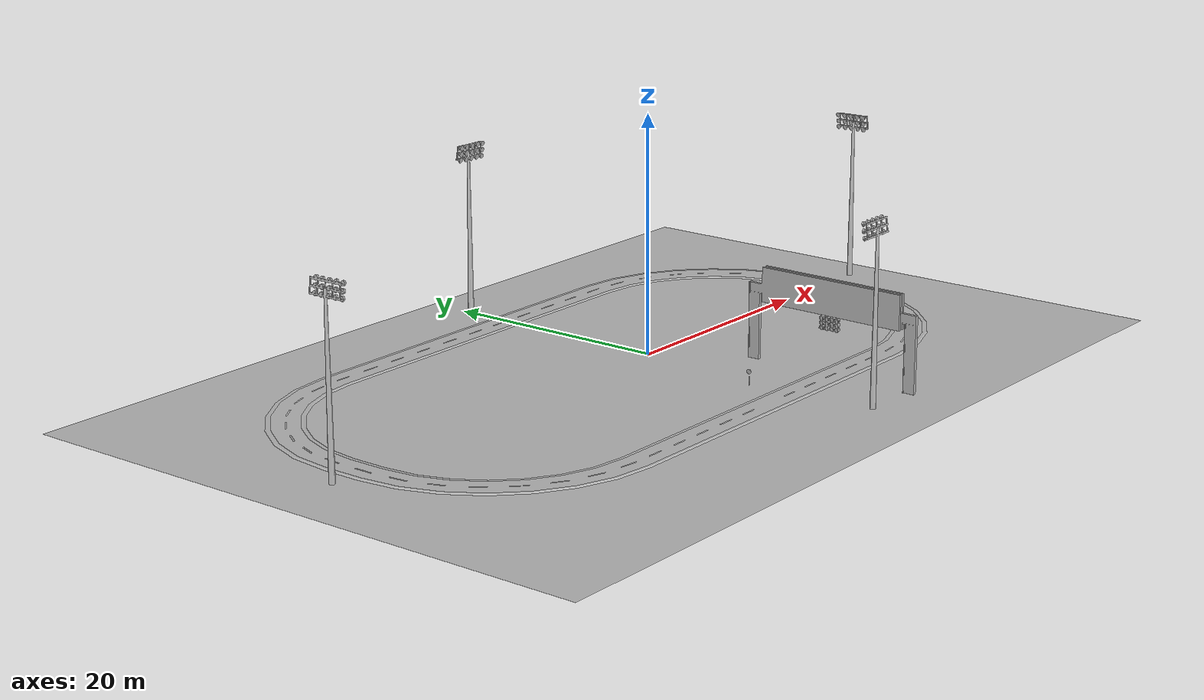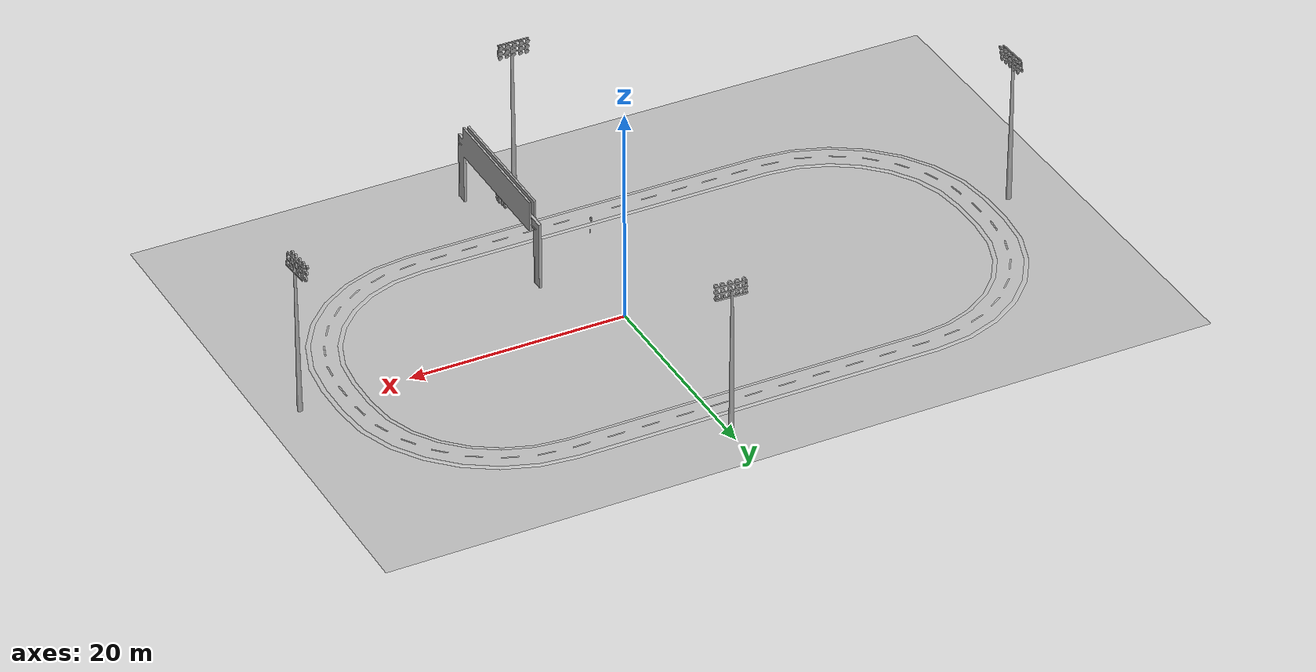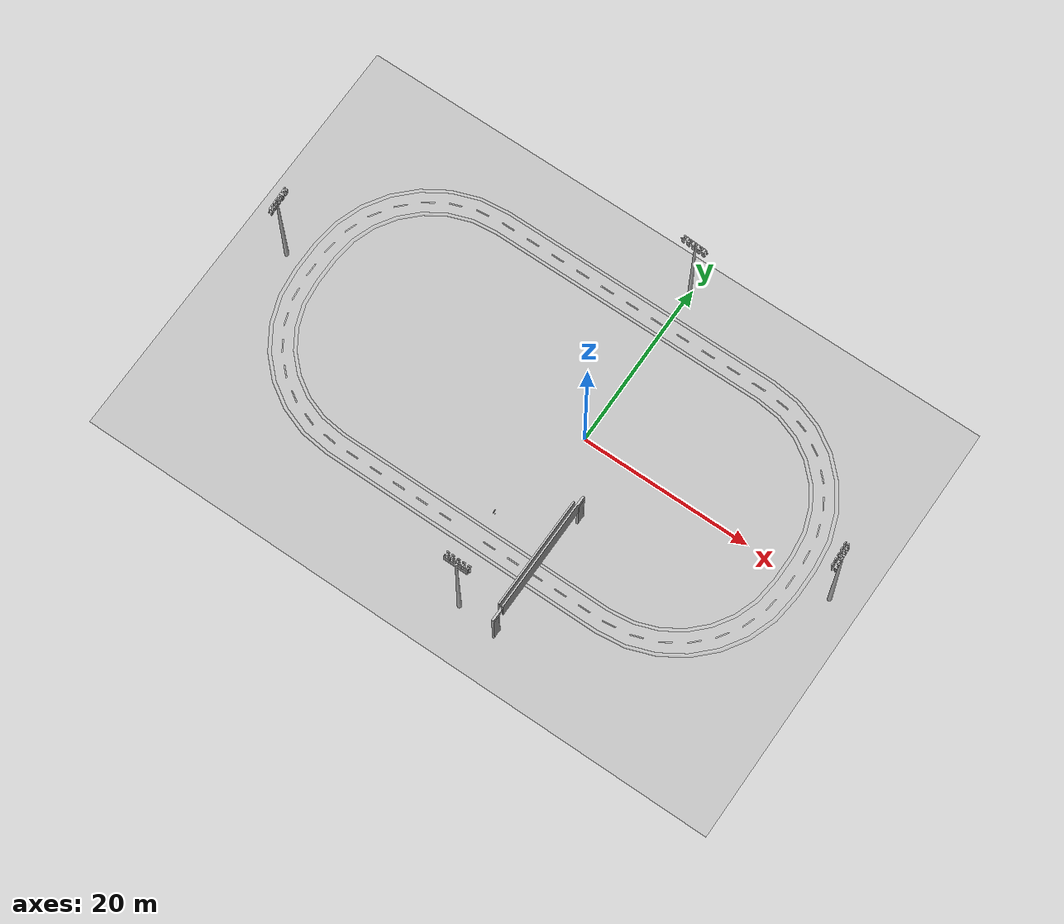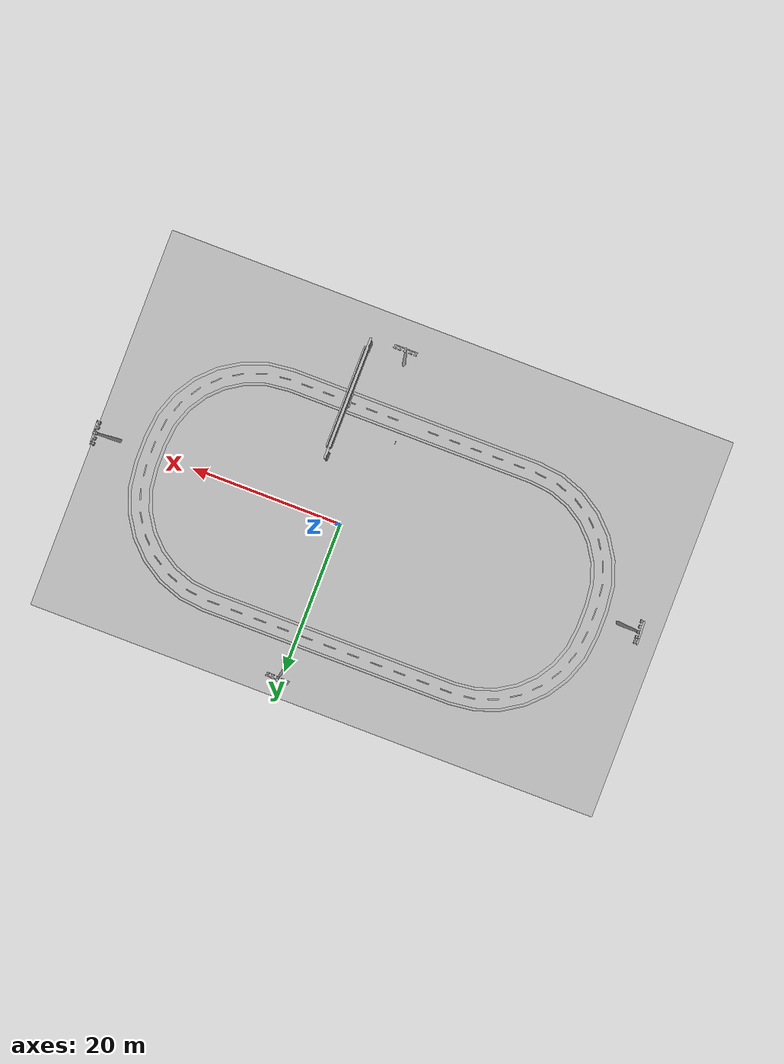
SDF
<sdf version="1.6">
 <world name="default">
  <gravity>0 0 -9.8</gravity>
  <magnetic_field>6e-06 2.3e-05 -4.2e-05</magnetic_field>
  <atmosphere type="adiabatic"/>
  <physics name="default_physics" default="0" type="ode">
   <max_step_size>0.001</max_step_size>
   <real_time_factor>1</real_time_factor>
   <real_time_update_rate>1000</real_time_update_rate>
  </physics>
  <scene><ambient>0.4 0.4 0.4 1</ambient><background>0.7 0.7 0.7 1</background><shadows>1</shadows></scene>
  <spherical_coordinates>
   <surface_model>EARTH_WGS84</surface_model>
   <latitude_deg>0</latitude_deg>
   <longitude_deg>0</longitude_deg>
   <elevation>0</elevation>
   <heading_deg>0</heading_deg>
  </spherical_coordinates>
  <model name="aws_robomaker_racetrack_Billboard_01">
   <include><uri>model://aws_robomaker_racetrack_Billboard_01</uri></include>
   <pose>4.32789 -14.8431 -2e-06 0 1e-06 1.56416</pose>
  </model>
  <model name="aws_robomaker_racetrack_RaceStartLight_01_00">
   <include><uri>model://aws_robomaker_racetrack_RaceStartLight_01</uri></include>
   <pose>4.13359 -14.1692 5.08709 0 -0 0</pose>
  </model>
  <model name="aws_robomaker_racetrack_RaceStartLight_01_01">
   <include><uri>model://aws_robomaker_racetrack_RaceStartLight_01</uri></include>
   <pose>4.14665 -14.6522 5.08709 0 -0 0</pose>
  </model>
  <model name="aws_robomaker_racetrack_RaceStartLight_01_02">
   <include><uri>model://aws_robomaker_racetrack_RaceStartLight_01</uri></include>
   <pose>4.21676 -15.0918 5.08709 0 -0 0</pose>
  </model>
  <model name="aws_robomaker_racetrack_RaceStartLight_01_03">
   <include><uri>model://aws_robomaker_racetrack_RaceStartLight_01</uri></include>
   <pose>4.17594 -15.5526 5.08709 0 -0 0</pose>
  </model>
  <model name="aws_robomaker_racetrack_StopSign_01_00">
   <include><uri>model://aws_robomaker_racetrack_StopSign_01</uri></include>
   <pose>-2.7487 -12.1054 0.000775 0.075944 0.005053 -1.56731</pose>
  </model>
  <model name="aws_robomaker_racetrack_Track_05_00">
   <include><uri>model://aws_robomaker_racetrack_Track_05</uri></include>
   <pose>0 0 0.051 0 -0 0</pose>
  </model>
  <model name="aws_robomaker_racetrack_Trackline_01_00">
   <include><uri>model://aws_robomaker_racetrack_Trackline_01</uri></include>
   <pose>-4.24539 0 0.102 0 -0 0</pose>
  </model>
  <model name="aws_robomaker_racetrack_Ground_01_00">
   <include><uri>model://aws_robomaker_racetrack_Ground_01</uri></include>
   <pose>-4.9 -2 0.05 0 -0 0</pose>
  </model>
  <model name="aws_robomaker_racetrack_Light_01_00">
   <include><uri>model://aws_robomaker_racetrack_Light_01</uri></include>
   <pose>-0.355802 -21.7691 0 0 -0 0</pose>
  </model>
  <model name="aws_robomaker_racetrack_Light_01_01">
   <include><uri>model://aws_robomaker_racetrack_Light_01</uri></include>
   <pose>0.041158 19.0887 0 0 -0 3.09146</pose>
  </model>
  <model name="aws_robomaker_racetrack_Light_01_02">
   <include><uri>model://aws_robomaker_racetrack_Light_01</uri></include>
   <pose>29.8469 -0.049215 0 0 -0 1.63215</pose>
  </model>
  <model name="aws_robomaker_racetrack_Light_01_03">
   <include><uri>model://aws_robomaker_racetrack_Light_01</uri></include>
   <pose>-37.2567 -0.808964 0 0 0 -1.52672</pose>
  </model>
  <model name="ground_plane">
   <pose>0 0 -1 0 -0 0</pose>
   <scale>1 1 1</scale>
   <link name="link">
    <pose>0 0 -1 0 -0 0</pose>
    <velocity>0 0 0 0 -0 0</velocity>
    <acceleration>0 0 0 0 -0 0</acceleration>
   </link>
  </model>
  <light name="sun" type="directional">
   <pose>0 0 10 0 0 0</pose>
   <diffuse>1 1 1 1</diffuse>
   <specular>1 1 1 1</specular>
   <attenuation>
    <range>1000</range>
    <constant>0.9</constant>
    <linear>0.01</linear>
    <quadratic>0.001</quadratic>
   </attenuation>
   <direction>-0.5 0.1 -0.9</direction>
  </light>
  <light name="sun2" type="directional">
   <pose>0 0 10 0 0 0</pose>
   <diffuse>1 1 1 1</diffuse>
   <specular>1 1 1 1</specular>
   <attenuation>
    <range>1000</range>
    <constant>0.9</constant>
    <linear>0.01</linear>
    <quadratic>0.001</quadratic>
   </attenuation>
   <direction>-0.5 0.1 -0.9</direction>
  </light>
  <light name="user_point_light_0" type="point">
   <pose>1.49278 -15.5363 1 0 -0 0</pose>
   <diffuse>0 0.98039 0 1</diffuse>
   <specular>0.1 0.1 0.1 1</specular>
   <attenuation>
    <range>0.3</range>
    <constant>0.02</constant>
    <linear>0.01</linear>
    <quadratic>0</quadratic>
   </attenuation>
   <cast_shadows>0</cast_shadows>
   <direction>0 0 -1</direction>
  </light>
  <light name="user_point_light_1" type="point">
   <pose>6.99411 -11.55 1 0 -0 0</pose>
   <diffuse>0 0.98039 0 1</diffuse>
   <specular>0.1 0.1 0.1 1</specular>
   <attenuation>
    <range>0.3</range>
    <constant>0.02</constant>
    <linear>0.01</linear>
    <quadratic>0</quadratic>
   </attenuation>
   <cast_shadows>0</cast_shadows>
   <direction>0 0 -1</direction>
  </light>
  <light name="user_point_light_2" type="point">
   <pose>5.65528 -14.8924 1 0 -0 0</pose>
   <diffuse>0 0.98039 0 1</diffuse>
   <specular>0.1 0.1 0.1 1</specular>
   <attenuation>
    <range>0.3</range>
    <constant>0.02</constant>
    <linear>0.01</linear>
    <quadratic>0</quadratic>
   </attenuation>
   <cast_shadows>0</cast_shadows>
   <direction>0 0 -1</direction>
  </light>
  <light name="user_point_light_3" type="point">
   <pose>3.6452 -17.3437 1 0 -0 0</pose>
   <diffuse>0 0.98039 0 1</diffuse>
   <specular>0.1 0.1 0.1 1</specular>
   <attenuation>
    <range>0.3</range>
    <constant>0.02</constant>
    <linear>0.01</linear>
    <quadratic>0</quadratic>
   </attenuation>
   <cast_shadows>0</cast_shadows>
   <direction>0 0 -1</direction>
  </light>
 </world>
</sdf>

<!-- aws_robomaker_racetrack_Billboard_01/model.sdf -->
<sdf version='1.6'>
  <model name='aws_Billboard_01'>
    <link name='body'>
      <pose frame=''>0 0 0 0 -0 0</pose>
      <self_collide>0</self_collide>
      <kinematic>0</kinematic>
      <gravity>1</gravity>
      <inertial>
        <mass>1000</mass>
        <pose frame=''>0 0 0 0 -0 0</pose>
        <inertia>
          <ixx>1</ixx>
          <ixy>0</ixy>
          <ixz>0</ixz>
          <iyy>1</iyy>
          <iyz>0</iyz>
          <izz>1</izz>
        </inertia>
      </inertial>
      <visual name='visual'>
        <geometry>
          <mesh>
            <uri>models/aws_robomaker_racetrack_Billboard_01/meshes/aws_Billboard_01_visual.obj</uri>
            <scale>0.01 0.01 0.01</scale>
          </mesh>
        </geometry>
        <material>
          <shader type='pixel'>
            <normal_map>__default__</normal_map>
          </shader>
        </material>
        <pose frame=''>0 0 0 0 -0 0</pose>
        <cast_shadows>1</cast_shadows>
        <transparency>0</transparency>
        <meta>
          <layer>2</layer>
        </meta>
      </visual>

    </link>
    <static>true</static>
  </model>
</sdf>

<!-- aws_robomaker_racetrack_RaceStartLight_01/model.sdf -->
<sdf version='1.6'>
  <model name='aws_RaceStartLight_01'>
    <link name='body'>
      <pose frame=''>0 0 0 0 -0 0</pose>
      <inertial>
        <mass>1</mass>
        <pose frame=''>0 0 0 0 -0 0</pose>
        <inertia>
          <ixx>1</ixx>
          <ixy>0</ixy>
          <ixz>0</ixz>
          <iyy>1</iyy>
          <iyz>0</iyz>
          <izz>1</izz>
        </inertia>
      </inertial>
      <self_collide>0</self_collide>
      <kinematic>0</kinematic>
      <gravity>1</gravity>
      <visual name='visual'>
        <geometry>
          <mesh>
            <uri>file://models/aws_robomaker_racetrack_RaceStartLight_01/meshes/aws_RaceStartLight_01_visual.obj</uri>
            <scale>0.01 0.01 0.01</scale>
          </mesh>
        </geometry>
        <material>
          <shader type='pixel'>
            <normal_map>__default__</normal_map>
          </shader>
        </material>
        <pose frame=''>0 0 0 0 -0 0</pose>
        <cast_shadows>1</cast_shadows>
        <transparency>0</transparency>
        <meta>
          <layer>2</layer>
        </meta>
      </visual>
      <collision name='collision_1'>
        <laser_retro>0</laser_retro>
        <max_contacts>10</max_contacts>
        <pose frame=''>0 0 0 0 -0 0</pose>
        <geometry>
          <mesh>
            <uri>file://models/aws_robomaker_racetrack_RaceStartLight_01/meshes/aws_RaceStartLight_01_collision.obj</uri>
            <scale>0.01 0.01 0.01</scale>
          </mesh>
        </geometry>
        <surface>
          <friction>
            <ode>
              <mu>1</mu>
              <mu2>1</mu2>
              <fdir1>0 0 0</fdir1>
              <slip1>0</slip1>
              <slip2>0</slip2>
            </ode>
            <torsional>
              <coefficient>1</coefficient>
              <patch_radius>0</patch_radius>
              <surface_radius>0</surface_radius>
              <use_patch_radius>1</use_patch_radius>
              <ode>
                <slip>0</slip>
              </ode>
            </torsional>
          </friction>
          <bounce>
            <restitution_coefficient>0</restitution_coefficient>
            <threshold>1e+06</threshold>
          </bounce>
          <contact>
            <collide_without_contact>0</collide_without_contact>
            <collide_without_contact_bitmask>1</collide_without_contact_bitmask>
            <collide_bitmask>2</collide_bitmask>
            <ode>
              <soft_cfm>0</soft_cfm>
              <soft_erp>0.2</soft_erp>
              <kp>1e+13</kp>
              <kd>1</kd>
              <max_vel>0.01</max_vel>
              <min_depth>0</min_depth>
            </ode>
            <bullet>
              <split_impulse>1</split_impulse>
              <split_impulse_penetration_threshold>-0.01</split_impulse_penetration_threshold>
              <soft_cfm>0</soft_cfm>
              <soft_erp>0.2</soft_erp>
              <kp>1e+13</kp>
              <kd>1</kd>
            </bullet>
          </contact>
        </surface>
      </collision>
    </link>
    <static>1</static>
    <allow_auto_disable>1</allow_auto_disable>
  </model>
</sdf>

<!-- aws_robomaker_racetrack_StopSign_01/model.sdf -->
<sdf version='1.6'>
  <model name='aws_StopSign_01'>
    <link name='body'>
      <pose frame=''>0 0 0 0 -0 0</pose>
      <self_collide>0</self_collide>
      <kinematic>0</kinematic>
      <gravity>1</gravity>
      <inertial>
        <mass>2</mass>
        <pose frame=''>0 0 0 0 -0 0</pose>
        <inertia>
          <ixx>1</ixx>
          <ixy>0</ixy>
          <ixz>0</ixz>
          <iyy>1</iyy>
          <iyz>0</iyz>
          <izz>1</izz>
        </inertia>
      </inertial>
      <visual name='visual'>
        <geometry>
          <mesh>
            <uri>file://models/aws_robomaker_racetrack_StopSign_01/meshes/aws_StopSign_01_visual.obj</uri>
            <scale>0.01 0.01 0.01</scale>
          </mesh>
        </geometry>
        <material>
          <shader type='pixel'>
            <normal_map>__default__</normal_map>
          </shader>
        </material>
        <pose frame=''>0 0 0 0 -0 0</pose>
        <cast_shadows>1</cast_shadows>
        <transparency>0</transparency>
        <meta>
          <layer>0</layer>
        </meta>
      </visual>
      <collision name='collision_0'>
        <laser_retro>0</laser_retro>
        <max_contacts>10</max_contacts>
        <pose frame=''>0 0 0 0 -0 0</pose>
        <geometry>
          <mesh>
            <uri>file://models/aws_robomaker_racetrack_StopSign_01/meshes/aws_StopSign_01_collision.obj</uri>
            <scale>0.01 0.01 0.01</scale>
          </mesh>
        </geometry>
        <surface>
          <friction>
            <ode>
              <mu>1</mu>
              <mu2>1</mu2>
              <fdir1>0 0 0</fdir1>
              <slip1>0</slip1>
              <slip2>0</slip2>
            </ode>
            <torsional>
              <coefficient>1</coefficient>
              <patch_radius>0</patch_radius>
              <surface_radius>0</surface_radius>
              <use_patch_radius>1</use_patch_radius>
              <ode>
                <slip>0</slip>
              </ode>
            </torsional>
          </friction>
          <bounce>
            <restitution_coefficient>0</restitution_coefficient>
            <threshold>1e+06</threshold>
          </bounce>
          <contact>
            <collide_without_contact>0</collide_without_contact>
            <collide_without_contact_bitmask>1</collide_without_contact_bitmask>
            <collide_bitmask>1</collide_bitmask>
            <ode>
              <soft_cfm>0</soft_cfm>
              <soft_erp>0.2</soft_erp>
              <kp>1e+13</kp>
              <kd>1</kd>
              <max_vel>0.01</max_vel>
              <min_depth>0</min_depth>
            </ode>
            <bullet>
              <split_impulse>1</split_impulse>
              <split_impulse_penetration_threshold>-0.01</split_impulse_penetration_threshold>
              <soft_cfm>0</soft_cfm>
              <soft_erp>0.2</soft_erp>
              <kp>1e+13</kp>
              <kd>1</kd>
            </bullet>
          </contact>
        </surface>
      </collision>
    </link>
    <static>true</static>
  </model>
</sdf>

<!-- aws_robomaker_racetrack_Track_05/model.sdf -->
<sdf version='1.6'>

  <model name='aws_Track_05_border'>

     <link name='body_border'>
      <pose frame=''>0 0 0 0 -0 0</pose>
      <self_collide>0</self_collide>
      <kinematic>0</kinematic>
      <gravity>1</gravity>
      <inertial>
        <mass>1000</mass>
        <pose frame=''>0 0 0 0 -0 0</pose>
        <inertia>
          <ixx>1</ixx>
          <ixy>0</ixy>
          <ixz>0</ixz>
          <iyy>1</iyy>
          <iyz>0</iyz>
          <izz>1</izz>
        </inertia>
      </inertial>
      <visual name='visual'>
        <geometry>
          <mesh>
            <uri>file://models/aws_robomaker_racetrack_Track_05/meshes/aws_Track_05_visual_border.obj</uri>
            <scale>1 1 1</scale>
          </mesh>
        </geometry>
        <material>
          <shader type='pixel'>
            <normal_map>__default__</normal_map>
          </shader>
        </material>
        <pose frame=''>0 0 0 0 -0 0</pose>
        <cast_shadows>1</cast_shadows>
        <transparency>0</transparency>
        <meta>
          <layer>0</layer>
        </meta>
      </visual>

       <collision name='collision_0'>
        <laser_retro>0</laser_retro>
        <max_contacts>10</max_contacts>
        <pose frame=''>0 0 0 0 -0 0</pose>
        <geometry>
          <mesh>
            <uri>file://models/aws_robomaker_racetrack_Track_05/meshes/aws_Track_05_visual_border.obj</uri>
            <scale>1 1 1</scale>
          </mesh>
        </geometry>
        <surface>
          <friction>
            <ode>
              <mu>1</mu>
              <mu2>1</mu2>
              <fdir1>0 0 0</fdir1>
              <slip1>0</slip1>
              <slip2>0</slip2>
            </ode>
            <torsional>
              <coefficient>1</coefficient>
              <patch_radius>0</patch_radius>
              <surface_radius>0</surface_radius>
              <use_patch_radius>1</use_patch_radius>
              <ode>
                <slip>0</slip>
              </ode>
            </torsional>
          </friction>
          <bounce>
            <restitution_coefficient>0</restitution_coefficient>
            <threshold>1e+06</threshold>
          </bounce>
          <contact>
            <collide_without_contact>0</collide_without_contact>
            <collide_without_contact_bitmask>1</collide_without_contact_bitmask>
            <collide_bitmask>1</collide_bitmask>
            <ode>
              <soft_cfm>0</soft_cfm>
              <soft_erp>0.2</soft_erp>
              <kp>1e+13</kp>
              <kd>1</kd>
              <max_vel>0.01</max_vel>
              <min_depth>0</min_depth>
            </ode>
            <bullet>
              <split_impulse>1</split_impulse>
              <split_impulse_penetration_threshold>-0.01</split_impulse_penetration_threshold>
              <soft_cfm>0</soft_cfm>
              <soft_erp>0.2</soft_erp>
              <kp>1e+13</kp>
              <kd>1</kd>
            </bullet>
          </contact>
        </surface>
      </collision>

    </link>
  </model>

   <model name='aws_Track_05_border'>

     <link name='body_border'>
      <pose frame=''>0 0 0 0 -0 0</pose>
      <self_collide>0</self_collide>
      <kinematic>0</kinematic>
      <gravity>1</gravity>
      <inertial>
        <mass>1000</mass>
        <pose frame=''>0 0 0 0 -0 0</pose>
        <inertia>
          <ixx>1</ixx>
          <ixy>0</ixy>
          <ixz>0</ixz>
          <iyy>1</iyy>
          <iyz>0</iyz>
          <izz>1</izz>
        </inertia>
      </inertial>
      <visual name='visual'>
        <geometry>
          <mesh>
            <uri>file://models/aws_robomaker_racetrack_Track_05/meshes/aws_Track_05_visual_track.obj</uri>
            <scale>1 1 1</scale>
          </mesh>
        </geometry>
        <material>
          <shader type='pixel'>
            <normal_map>__default__</normal_map>
          </shader>
        </material>
        <pose frame=''>0 0 0 0 -0 0</pose>
        <cast_shadows>1</cast_shadows>
        <transparency>0</transparency>
        <meta>
          <layer>0</layer>
        </meta>
      </visual>
       <collision name='collision_0'>
        <laser_retro>0</laser_retro>
        <max_contacts>10</max_contacts>
        <pose frame=''>0 0 0 0 -0 0</pose>
        <geometry>
          <mesh>
            <uri>file://models/aws_robomaker_racetrack_Track_05/meshes/aws_Track_05_visual_track.obj</uri>
            <scale>1 1 1</scale>
          </mesh>
        </geometry>
        <surface>
          <friction>
            <ode>
              <mu>1</mu>
              <mu2>1</mu2>
              <fdir1>0 0 0</fdir1>
              <slip1>0</slip1>
              <slip2>0</slip2>
            </ode>
            <torsional>
              <coefficient>1</coefficient>
              <patch_radius>0</patch_radius>
              <surface_radius>0</surface_radius>
              <use_patch_radius>1</use_patch_radius>
              <ode>
                <slip>0</slip>
              </ode>
            </torsional>
          </friction>
          <bounce>
            <restitution_coefficient>0</restitution_coefficient>
            <threshold>1e+06</threshold>
          </bounce>
          <contact>
            <collide_without_contact>0</collide_without_contact>
            <collide_without_contact_bitmask>1</collide_without_contact_bitmask>
            <collide_bitmask>1</collide_bitmask>
            <ode>
              <soft_cfm>0</soft_cfm>
              <soft_erp>0.2</soft_erp>
              <kp>1e+13</kp>
              <kd>1</kd>
              <max_vel>0.01</max_vel>
              <min_depth>0</min_depth>
            </ode>
            <bullet>
              <split_impulse>1</split_impulse>
              <split_impulse_penetration_threshold>-0.01</split_impulse_penetration_threshold>
              <soft_cfm>0</soft_cfm>
              <soft_erp>0.2</soft_erp>
              <kp>1e+13</kp>
              <kd>1</kd>
            </bullet>
          </contact>
        </surface>
      </collision>
    </link>
  </model>
</sdf>

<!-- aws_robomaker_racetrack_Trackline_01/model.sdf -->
<sdf version='1.6'>
  <model name='aws_Trackline_01'>
    <link name='body'>
      <pose frame=''>0 0 0 0 -0 0</pose>
      <inertial>
        <mass>0.5</mass>
        <pose frame=''>0 0 0 0 -0 0</pose>
        <inertia>
          <ixx>1</ixx>
          <ixy>0</ixy>
          <ixz>0</ixz>
          <iyy>1</iyy>
          <iyz>0</iyz>
          <izz>1</izz>
        </inertia>
      </inertial>
      <self_collide>0</self_collide>
      <kinematic>0</kinematic>
      <gravity>1</gravity>
      <visual name='visual'>
        <geometry>
          <mesh>
            <uri>file://models/aws_robomaker_racetrack_Trackline_01/meshes/aws_Trackline_01_visual.obj</uri>
            <scale>0.01 0.01 0.01</scale>
          </mesh>
        </geometry>
        <material>
          <shader type='pixel'>
            <normal_map>__default__</normal_map>
          </shader>
        </material>
        <pose frame=''>0 0 0 0 -0 0</pose>
        <cast_shadows>1</cast_shadows>
        <transparency>0</transparency>
        <meta>
          <layer>0</layer>
        </meta>
      </visual>

    </link>
    <static>1</static>
  </model>
</sdf>

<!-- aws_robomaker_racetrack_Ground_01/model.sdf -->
<sdf version='1.6'>
  <model name='aws_Ground_01'>
    <link name='body'>
      <pose frame=''>0 0 0 0 -0 0</pose>
      <self_collide>0</self_collide>
      <kinematic>0</kinematic>
      <gravity>1</gravity>
      <inertial>
        <mass>10000</mass>
        <pose frame=''>0 0 0 0 -0 0</pose>
        <inertia>
          <ixx>0</ixx>
          <ixy>0</ixy>
          <ixz>0</ixz>
          <iyy>0</iyy>
          <iyz>0</iyz>
          <izz>0</izz>
        </inertia>
      </inertial>
      <visual name='visual'>
        <geometry>
          <mesh>
            <uri>file://models/aws_robomaker_racetrack_Ground_01/meshes/aws_Ground_01_visual.obj</uri>
            <scale>0.00090 0.0006 0.002</scale>
          </mesh>
        </geometry>
        <material>
          <shader type='pixel'>
            <normal_map>__default__</normal_map>
          </shader>
        </material>
        <pose frame=''>0 0 0 0 -0 0</pose>
        <cast_shadows>1</cast_shadows>
        <transparency>0</transparency>
        <meta>
          <layer>0</layer>
        </meta>
      </visual>
      <collision name='collision_0'>
        <laser_retro>0</laser_retro>
        <max_contacts>10</max_contacts>
        <pose frame=''>0 0 0 0 0 0</pose>
        <geometry>
          <mesh>
            <uri>file://models/aws_robomaker_racetrack_Ground_01/meshes/aws_Ground_01_collision.obj</uri>
            <scale>0.002 0.002 0.002</scale>
          </mesh>
        </geometry>
        <surface>
          <friction>
            <ode>
              <mu>1</mu>
              <mu2>1</mu2>
              <fdir1>0 0 0</fdir1>
              <slip1>0</slip1>
              <slip2>0</slip2>
            </ode>
            <torsional>
              <coefficient>1</coefficient>
              <patch_radius>0</patch_radius>
              <surface_radius>0</surface_radius>
              <use_patch_radius>1</use_patch_radius>
              <ode>
                <slip>0</slip>
              </ode>
            </torsional>
          </friction>
          <bounce>
            <restitution_coefficient>0</restitution_coefficient>
            <threshold>1e+06</threshold>
          </bounce>
          <contact>
            <collide_without_contact>0</collide_without_contact>
            <collide_without_contact_bitmask>1</collide_without_contact_bitmask>
            <collide_bitmask>0xffff</collide_bitmask>
            <ode>
              <soft_cfm>0</soft_cfm>
              <soft_erp>0.2</soft_erp>
              <kp>1e+13</kp>
              <kd>1</kd>
              <max_vel>0.01</max_vel>
              <min_depth>0</min_depth>
            </ode>
            <bullet>
              <split_impulse>1</split_impulse>
              <split_impulse_penetration_threshold>-0.01</split_impulse_penetration_threshold>
              <soft_cfm>0</soft_cfm>
              <soft_erp>0.2</soft_erp>
              <kp>1e+13</kp>
              <kd>1</kd>
            </bullet>
          </contact>
        </surface>
      </collision>
    </link>
    <static>1</static>
  </model>
</sdf>

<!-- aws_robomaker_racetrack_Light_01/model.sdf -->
<sdf version='1.6'>
  <model name='aws_Light_01'>
    <link name='body'>
      <pose frame=''>0 0 0 0 -0 0</pose>
      <self_collide>0</self_collide>
      <kinematic>0</kinematic>
      <gravity>1</gravity>
      <inertial>
        <mass>100</mass>
        <pose frame=''>0 0 0 0 -0 0</pose>
        <inertia>
          <ixx>1</ixx>
          <ixy>0</ixy>
          <ixz>0</ixz>
          <iyy>1</iyy>
          <iyz>0</iyz>
          <izz>1</izz>
        </inertia>
      </inertial>
      <visual name='visual'>
        <geometry>
          <mesh>
            <uri>file://models/aws_robomaker_racetrack_Light_01/meshes/aws_Light_01_visual.obj</uri>
            <scale>0.01 0.01 0.01</scale>
          </mesh>
        </geometry>
        <material>
          <shader type='pixel'>
            <normal_map>__default__</normal_map>
          </shader>
        </material>
        <pose frame=''>0 0 0 0 -0 0</pose>
        <cast_shadows>1</cast_shadows>
        <transparency>0</transparency>
        <meta>
          <layer>0</layer>
        </meta>
      </visual>
      <collision name='collision_0'>
        <laser_retro>0</laser_retro>
        <max_contacts>10</max_contacts>
        <pose frame=''>0 0 0 0 -0 0</pose>
        <geometry>
          <mesh>
            <uri>file://models/aws_robomaker_racetrack_Light_01/meshes/aws_Light_01_collision.obj</uri>
            <scale>0.01 0.01 0.01</scale>
          </mesh>
        </geometry>
        <surface>
          <friction>
            <ode>
              <mu>1</mu>
              <mu2>1</mu2>
              <fdir1>0 0 0</fdir1>
              <slip1>0</slip1>
              <slip2>0</slip2>
            </ode>
            <torsional>
              <coefficient>1</coefficient>
              <patch_radius>0</patch_radius>
              <surface_radius>0</surface_radius>
              <use_patch_radius>1</use_patch_radius>
              <ode>
                <slip>0</slip>
              </ode>
            </torsional>
          </friction>
          <bounce>
            <restitution_coefficient>0</restitution_coefficient>
            <threshold>1e+06</threshold>
          </bounce>
          <contact>
            <collide_without_contact>0</collide_without_contact>
            <collide_without_contact_bitmask>1</collide_without_contact_bitmask>
            <collide_bitmask>1</collide_bitmask>
            <ode>
              <soft_cfm>0</soft_cfm>
              <soft_erp>0.2</soft_erp>
              <kp>1e+13</kp>
              <kd>1</kd>
              <max_vel>0.01</max_vel>
              <min_depth>0</min_depth>
            </ode>
            <bullet>
              <split_impulse>1</split_impulse>
              <split_impulse_penetration_threshold>-0.01</split_impulse_penetration_threshold>
              <soft_cfm>0</soft_cfm>
              <soft_erp>0.2</soft_erp>
              <kp>1e+13</kp>
              <kd>1</kd>
            </bullet>
          </contact>
        </surface>
      </collision>
    </link>
    <static>1</static>
  </model>
</sdf>
